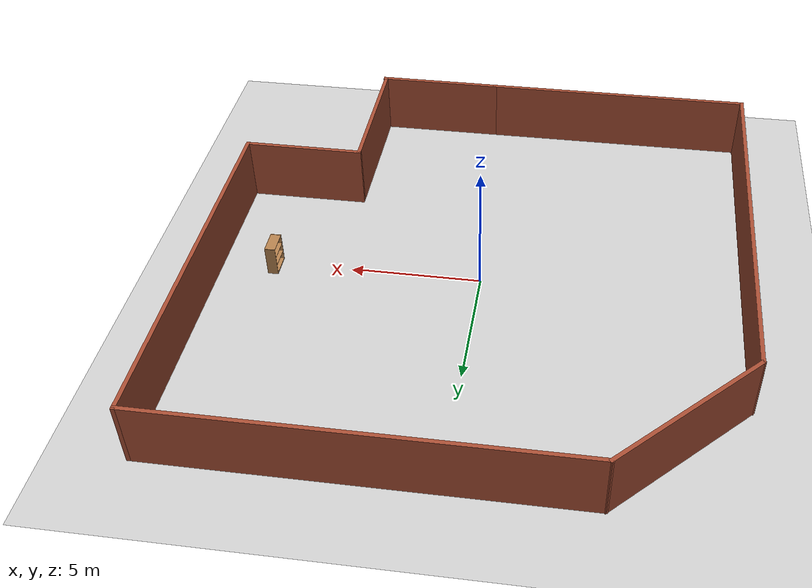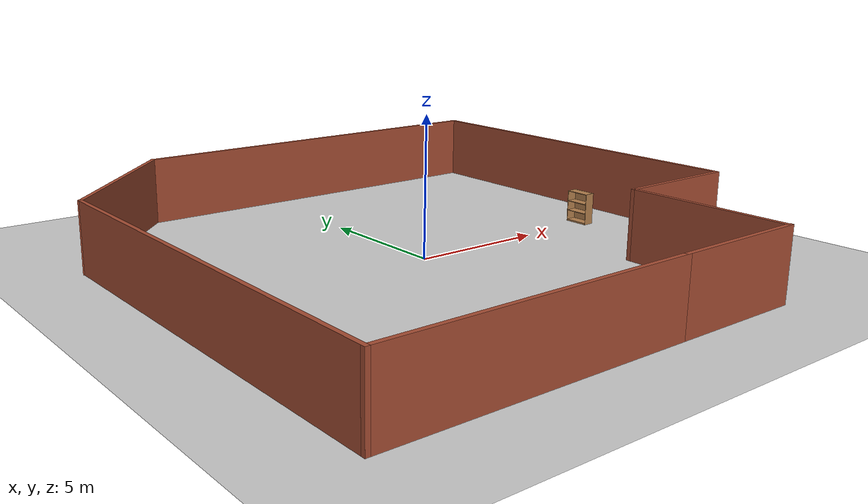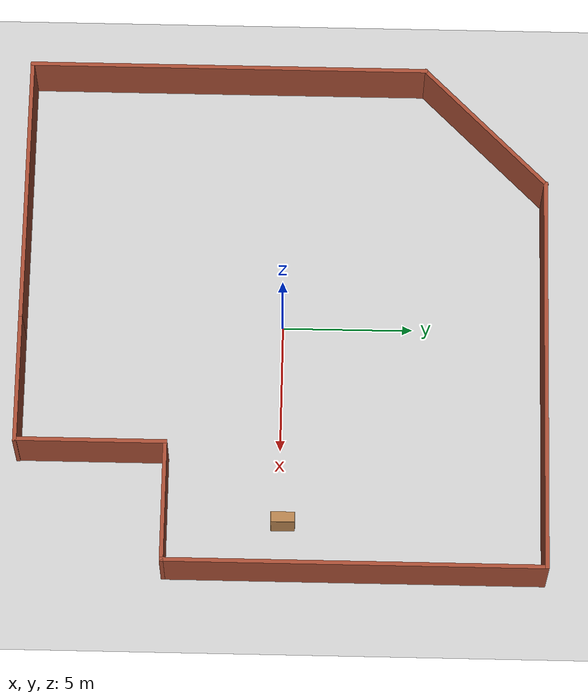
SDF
<sdf version="1.7">
 <world name="default">
  <light name="sun" type="directional">
   <pose>0 0 10 0 -0 0</pose>
   <diffuse>0.8 0.8 0.8 1</diffuse>
   <specular>0.2 0.2 0.2 1</specular>
   <attenuation>
    <range>1000</range>
    <constant>0.9</constant>
    <linear>0.01</linear>
    <quadratic>0.001</quadratic>
   </attenuation>
   <direction>-0.5 0.1 -0.9</direction>
   <spot><inner_angle>0</inner_angle><outer_angle>0</outer_angle><falloff>0</falloff></spot>
  </light>
  <model name="ground_plane">
   <static>1</static>
   <link name="link">
    <collision name="collision">
     <geometry><plane><normal>0 0 1</normal><size>100 100</size></plane></geometry>
     <surface>
      <contact><collide_bitmask>65535</collide_bitmask></contact>
      <friction><ode><mu>100</mu><mu2>50</mu2></ode></friction>
     </surface>
    </collision>
    <visual name="visual">
     <cast_shadows>0</cast_shadows>
     <geometry><plane><normal>0 0 1</normal><size>100 100</size></plane></geometry>
     <material>
      <script><uri>file://media/materials/scripts/gazebo.material</uri><name>Gazebo/Grey</name></script>
     </material>
    </visual>
   </link>
  </model>
  <gravity>0 0 -9.8</gravity>
  <magnetic_field>6e-06 2.3e-05 -4.2e-05</magnetic_field>
  <atmosphere type="adiabatic"/>
  <physics type="ode">
   <max_step_size>0.001</max_step_size>
   <real_time_factor>1</real_time_factor>
   <real_time_update_rate>1000</real_time_update_rate>
  </physics>
  <scene><ambient>0.4 0.4 0.4 1</ambient><background>0.7 0.7 0.7 1</background><shadows>1</shadows></scene>
  <spherical_coordinates>
   <surface_model>EARTH_WGS84</surface_model>
   <latitude_deg>0</latitude_deg>
   <longitude_deg>0</longitude_deg>
   <elevation>0</elevation>
   <heading_deg>0</heading_deg>
  </spherical_coordinates>
  <model name="home_map">
   <pose>0.083261 0.037966 0 0 -0 0</pose>
   <link name="Wall_1">
    <collision name="Wall_1_Collision">
     <geometry><box><size>10.75 0.15 2.5</size></box></geometry>
     <pose>0 0 1.25 0 -0 0</pose>
    </collision>
    <visual name="Wall_1_Visual">
     <pose>0 0 1.25 0 -0 0</pose>
     <geometry><box><size>10.75 0.15 2.5</size></box></geometry>
     <material>
      <script><uri>file://media/materials/scripts/gazebo.material</uri><name>Gazebo/Bricks</name></script>
      <ambient>0.760784 0.662745 0.627451 1</ambient>
     </material>
     <meta><layer>0</layer></meta>
    </visual>
    <pose>-4.69292 -10.024 0 0 -0 3.14159</pose>
   </link>
   <link name="Wall_11">
    <collision name="Wall_11_Collision">
     <geometry><box><size>5 0.15 2.5</size></box></geometry>
     <pose>0 0 1.25 0 -0 0</pose>
    </collision>
    <visual name="Wall_11_Visual">
     <pose>0 0 1.25 0 -0 0</pose>
     <geometry><box><size>5 0.15 2.5</size></box></geometry>
     <material>
      <script><uri>file://media/materials/scripts/gazebo.material</uri><name>Gazebo/Bricks</name></script>
      <ambient>1 1 1 1</ambient>
     </material>
     <meta><layer>0</layer></meta>
    </visual>
    <pose>3.03208 -10.024 0 0 -0 0</pose>
   </link>
   <link name="Wall_2">
    <collision name="Wall_2_Collision">
     <geometry><box><size>15.5 0.15 2.5</size></box></geometry>
     <pose>0 0 1.25 0 -0 0</pose>
    </collision>
    <visual name="Wall_2_Visual">
     <pose>0 0 1.25 0 -0 0</pose>
     <geometry><box><size>15.5 0.15 2.5</size></box></geometry>
     <material>
      <script><uri>file://media/materials/scripts/gazebo.material</uri><name>Gazebo/Bricks</name></script>
      <ambient>1 1 1 1</ambient>
     </material>
     <meta><layer>0</layer></meta>
    </visual>
    <pose>-9.99292 -2.34899 0 0 -0 1.5708</pose>
   </link>
   <link name="Wall_5">
    <collision name="Wall_5_Collision">
     <geometry><box><size>6.75 0.15 2.5</size></box></geometry>
     <pose>0 0 1.25 0 -0 0</pose>
    </collision>
    <visual name="Wall_5_Visual">
     <pose>0 0 1.25 0 -0 0</pose>
     <geometry><box><size>6.75 0.15 2.5</size></box></geometry>
     <material>
      <script><uri>file://media/materials/scripts/gazebo.material</uri><name>Gazebo/Bricks</name></script>
      <ambient>1 1 1 1</ambient>
     </material>
     <meta><layer>0</layer></meta>
    </visual>
    <pose>-7.65947 7.65947 0 0 -0 0.785398</pose>
   </link>
   <link name="Wall_6">
    <collision name="Wall_6_Collision">
     <geometry><box><size>15.5 0.15 2.5</size></box></geometry>
     <pose>0 0 1.25 0 -0 0</pose>
    </collision>
    <visual name="Wall_6_Visual">
     <pose>0 0 1.25 0 -0 0</pose>
     <geometry><box><size>15.5 0.15 2.5</size></box></geometry>
     <material>
      <script><uri>file://media/materials/scripts/gazebo.material</uri><name>Gazebo/Bricks</name></script>
      <ambient>1 1 1 1</ambient>
     </material>
     <meta><layer>0</layer></meta>
    </visual>
    <pose>2.34898 9.99292 0 0 -0 0</pose>
   </link>
   <link name="Wall_7">
    <collision name="Wall_7_Collision">
     <geometry><box><size>14.5 0.15 2.5</size></box></geometry>
     <pose>0 0 1.25 0 -0 0</pose>
    </collision>
    <visual name="Wall_7_Visual">
     <pose>0 0 1.25 0 -0 0</pose>
     <geometry><box><size>14.5 0.15 2.5</size></box></geometry>
     <material>
      <script><uri>file://media/materials/scripts/gazebo.material</uri><name>Gazebo/Bricks</name></script>
      <ambient>1 1 1 1</ambient>
     </material>
     <meta><layer>0</layer></meta>
    </visual>
    <pose>10.024 2.81792 0 0 -0 -1.5708</pose>
   </link>
   <link name="Wall_8">
    <collision name="Wall_8_Collision">
     <geometry><box><size>4.75 0.15 2.5</size></box></geometry>
     <pose>0 0 1.25 0 -0 0</pose>
    </collision>
    <visual name="Wall_8_Visual">
     <pose>0 0 1.25 0 -0 0</pose>
     <geometry><box><size>4.75 0.15 2.5</size></box></geometry>
     <material>
      <script><uri>file://media/materials/scripts/gazebo.material</uri><name>Gazebo/Bricks</name></script>
      <ambient>1 1 1 1</ambient>
     </material>
     <meta><layer>0</layer></meta>
    </visual>
    <pose>7.72398 -4.35708 0 0 -0 3.14159</pose>
   </link>
   <link name="Wall_9">
    <collision name="Wall_9_Collision">
     <geometry><box><size>5.75 0.15 2.5</size></box></geometry>
     <pose>0 0 1.25 0 -0 0</pose>
    </collision>
    <visual name="Wall_9_Visual">
     <pose>0 0 1.25 0 -0 0</pose>
     <geometry><box><size>5.75 0.15 2.5</size></box></geometry>
     <material>
      <script><uri>file://media/materials/scripts/gazebo.material</uri><name>Gazebo/Bricks</name></script>
      <ambient>1 1 1 1</ambient>
     </material>
     <meta><layer>0</layer></meta>
    </visual>
    <pose>5.42399 -7.15708 0 0 -0 -1.5708</pose>
   </link>
   <static>1</static>
  </model>
  <model name="bookshelf">
   <static>1</static>
   <link name="link">
    <inertial><mass>1</mass></inertial>
    <collision name="back">
     <pose>0 0.005 0.6 0 -0 0</pose>
     <geometry><box><size>0.9 0.01 1.2</size></box></geometry>
    </collision>
    <visual name="visual1">
     <pose>0 0.005 0.6 0 -0 0</pose>
     <geometry><box><size>0.9 0.01 1.2</size></box></geometry>
     <material>
      <script><uri>file://media/materials/scripts/gazebo.material</uri><name>Gazebo/Wood</name></script>
     </material>
    </visual>
    <collision name="left_side">
     <pose>0.45 -0.195 0.6 0 -0 0</pose>
     <geometry><box><size>0.02 0.4 1.2</size></box></geometry>
    </collision>
    <visual name="visual2">
     <pose>0.45 -0.195 0.6 0 -0 0</pose>
     <geometry><box><size>0.02 0.4 1.2</size></box></geometry>
     <material>
      <script><uri>file://media/materials/scripts/gazebo.material</uri><name>Gazebo/Wood</name></script>
     </material>
    </visual>
    <collision name="right_side">
     <pose>-0.45 -0.195 0.6 0 -0 0</pose>
     <geometry><box><size>0.02 0.4 1.2</size></box></geometry>
    </collision>
    <visual name="visual3">
     <pose>-0.45 -0.195 0.6 0 -0 0</pose>
     <geometry><box><size>0.02 0.4 1.2</size></box></geometry>
     <material>
      <script><uri>file://media/materials/scripts/gazebo.material</uri><name>Gazebo/Wood</name></script>
     </material>
    </visual>
    <collision name="bottom">
     <pose>0 -0.195 0.03 0 -0 0</pose>
     <geometry><box><size>0.88 0.4 0.06</size></box></geometry>
    </collision>
    <visual name="visual4">
     <pose>0 -0.195 0.03 0 -0 0</pose>
     <geometry><box><size>0.88 0.4 0.06</size></box></geometry>
     <material>
      <script><uri>file://media/materials/scripts/gazebo.material</uri><name>Gazebo/Wood</name></script>
     </material>
    </visual>
    <collision name="top">
     <pose>0 -0.195 1.19 0 -0 0</pose>
     <geometry><box><size>0.88 0.4 0.02</size></box></geometry>
    </collision>
    <visual name="visual5">
     <pose>0 -0.195 1.19 0 -0 0</pose>
     <geometry><box><size>0.88 0.4 0.02</size></box></geometry>
     <material>
      <script><uri>file://media/materials/scripts/gazebo.material</uri><name>Gazebo/Wood</name></script>
     </material>
    </visual>
    <collision name="low_shelf">
     <pose>0 -0.195 0.43 0 -0 0</pose>
     <geometry><box><size>0.88 0.4 0.02</size></box></geometry>
    </collision>
    <visual name="visual6">
     <pose>0 -0.195 0.43 0 -0 0</pose>
     <geometry><box><size>0.88 0.4 0.02</size></box></geometry>
     <material>
      <script><uri>file://media/materials/scripts/gazebo.material</uri><name>Gazebo/Wood</name></script>
     </material>
    </visual>
    <collision name="high_shelf">
     <pose>0 -0.195 0.8 0 -0 0</pose>
     <geometry><box><size>0.88 0.4 0.02</size></box></geometry>
    </collision>
    <visual name="visual7">
     <pose>0 -0.195 0.8 0 -0 0</pose>
     <geometry><box><size>0.88 0.4 0.02</size></box></geometry>
     <material>
      <script><uri>file://media/materials/scripts/gazebo.material</uri><name>Gazebo/Wood</name></script>
     </material>
    </visual>
   </link>
   <pose>8.17272 0.155748 0 0 0 -1.56464</pose>
  </model>
 </world>
</sdf>
